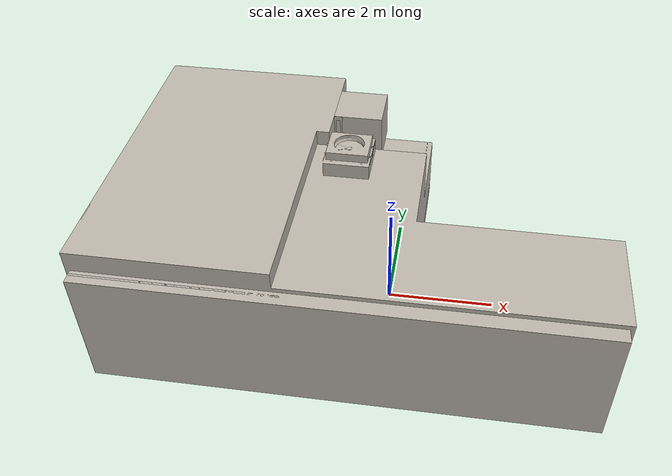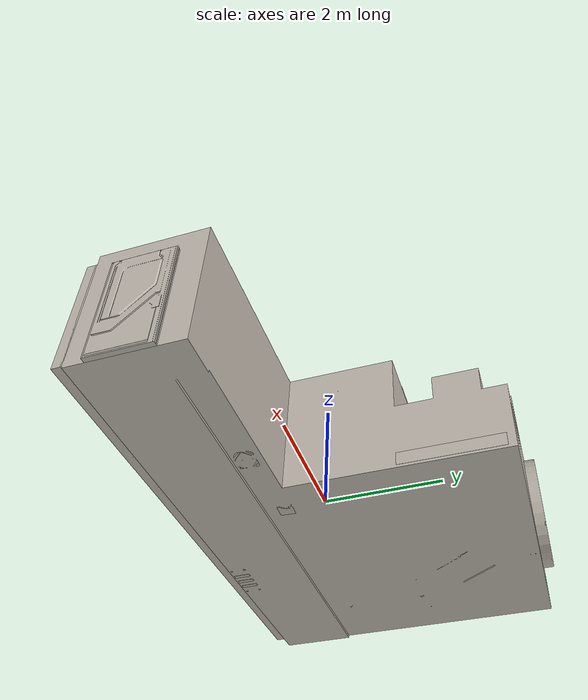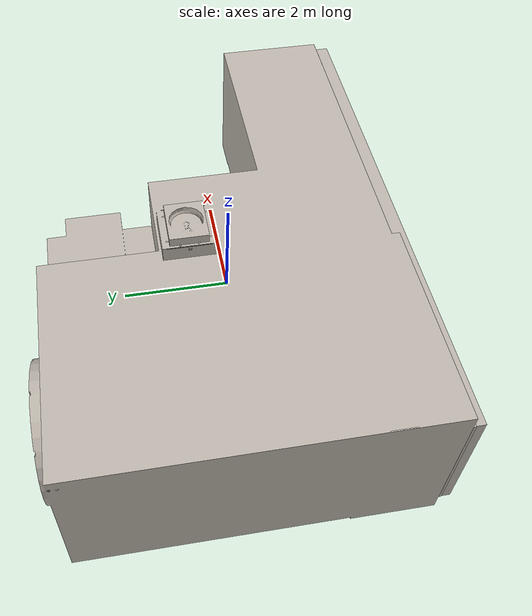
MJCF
<mujoco model="futuristic_room">
  <compiler angle="radian" eulerseq="xyz"/>
  <default>
    <default class="visual">
      <geom group="2" type="mesh" contype="0" conaffinity="0"/>
    </default>
    <default class="collision">
      <geom group="3" type="mesh"/>
    </default>
  </default>
  <asset>
    <texture type="2d" name="material_0" file="material_0.png"/>
    <material name="material_0" texture="material_0" specular="0.4000000000000001" shininess="0.001"/>
    <texture type="2d" name="material_1" file="material_1.png"/>
    <material name="material_1" texture="material_1" specular="0.4000000000000001" shininess="0.001"/>
    <texture type="2d" name="material_2" file="material_2.png"/>
    <material name="material_2" texture="material_2" specular="0.4000000000000001" shininess="0.001"/>
    <texture type="2d" name="material_3" file="material_3.png"/>
    <material name="material_3" texture="material_3" specular="0.4000000000000001" shininess="0.001"/>
    <texture type="2d" name="material_4" file="material_4.png"/>
    <material name="material_4" texture="material_4" specular="0.4000000000000001" shininess="0.001"/>
    <texture type="2d" name="material_5" file="material_5.png"/>
    <material name="material_5" texture="material_5" specular="0.4000000000000001" shininess="0.001"/>
    <texture type="2d" name="material_6" file="material_6.png"/>
    <material name="material_6" texture="material_6" specular="0.4000000000000001" shininess="0.001"/>
    <texture type="2d" name="material_7" file="material_7.png"/>
    <material name="material_7" texture="material_7" specular="0.4000000000000001" shininess="0.001"/>
    <texture type="2d" name="material_8" file="material_8.png"/>
    <material name="material_8" texture="material_8" specular="0.4000000000000001" shininess="0.001"/>
    <texture type="2d" name="material_9" file="material_9.png"/>
    <material name="material_9" texture="material_9" specular="0.4000000000000001" shininess="0.001"/>
    <texture type="2d" name="material_10" file="material_10.png"/>
    <material name="material_10" texture="material_10" specular="0.4000000000000001" shininess="0.001"/>
    <texture type="2d" name="material_11" file="material_11.png"/>
    <material name="material_11" texture="material_11" specular="0.4000000000000001" shininess="0.001"/>
    <texture type="2d" name="material_12" file="material_12.png"/>
    <material name="material_12" texture="material_12" specular="0.4000000000000001" shininess="0.001"/>
    <texture type="2d" name="material_13" file="material_13.png"/>
    <material name="material_13" texture="material_13" specular="0.4000000000000001" shininess="0.001"/>
    <texture type="2d" name="material_14" file="material_14.png"/>
    <material name="material_14" texture="material_14" specular="0.4000000000000001" shininess="0.001"/>
    <texture type="2d" name="material_15" file="material_15.png"/>
    <material name="material_15" texture="material_15" specular="0.4000000000000001" shininess="0.001"/>
    <texture type="2d" name="material_16" file="material_16.png"/>
    <material name="material_16" texture="material_16" specular="0.4000000000000001" shininess="0.001"/>
    <texture type="2d" name="material_17" file="material_17.png"/>
    <material name="material_17" texture="material_17" specular="0.4000000000000001" shininess="0.001"/>
    <texture type="2d" name="material_18" file="material_18.png"/>
    <material name="material_18" texture="material_18" specular="0.4000000000000001" shininess="0.001"/>
    <texture type="2d" name="material_19" file="material_19.png"/>
    <material name="material_19" texture="material_19" specular="0.4000000000000001" shininess="0.001"/>
    <texture type="2d" name="material_20" file="material_20.png"/>
    <material name="material_20" texture="material_20" specular="0.4000000000000001" shininess="0.001"/>
    <texture type="2d" name="material_21" file="material_21.png"/>
    <material name="material_21" texture="material_21" specular="0.4000000000000001" shininess="0.001"/>
    <texture type="2d" name="material_22" file="material_22.png"/>
    <material name="material_22" texture="material_22" specular="0.4000000000000001" shininess="0.001"/>
    <texture type="2d" name="material_23" file="material_23.png"/>
    <material name="material_23" texture="material_23" specular="0.4000000000000001" shininess="0.001"/>
    <texture type="2d" name="material_24" file="material_24.png"/>
    <material name="material_24" texture="material_24" specular="0.4000000000000001" shininess="0.001"/>
    <texture type="2d" name="material_25" file="material_25.png"/>
    <material name="material_25" texture="material_25" specular="0.4000000000000001" shininess="0.001"/>
    <texture type="2d" name="material_26" file="material_26.png"/>
    <material name="material_26" texture="material_26" specular="0.4000000000000001" shininess="0.001"/>
    <mesh file="futuristic_room_0.obj"/>
    <mesh file="futuristic_room_1.obj"/>
    <mesh file="futuristic_room_2.obj"/>
    <mesh file="futuristic_room_3.obj"/>
    <mesh file="futuristic_room_4.obj"/>
    <mesh file="futuristic_room_5.obj"/>
    <mesh file="futuristic_room_6.obj"/>
    <mesh file="futuristic_room_7.obj"/>
    <mesh file="futuristic_room_8.obj"/>
    <mesh file="futuristic_room_9.obj"/>
    <mesh file="futuristic_room_10.obj"/>
    <mesh file="futuristic_room_11.obj"/>
    <mesh file="futuristic_room_12.obj"/>
    <mesh file="futuristic_room_13.obj"/>
    <mesh file="futuristic_room_14.obj"/>
    <mesh file="futuristic_room_15.obj"/>
    <mesh file="futuristic_room_16.obj"/>
    <mesh file="futuristic_room_17.obj"/>
    <mesh file="futuristic_room_18.obj"/>
    <mesh file="futuristic_room_19.obj"/>
    <mesh file="futuristic_room_20.obj"/>
    <mesh file="futuristic_room_21.obj"/>
    <mesh file="futuristic_room_22.obj"/>
    <mesh file="futuristic_room_23.obj"/>
    <mesh file="futuristic_room_24.obj"/>
    <mesh file="futuristic_room_25.obj"/>
    <mesh file="futuristic_room_26.obj"/>
    <mesh file="futuristic_room_collision_0.obj"/>
    <mesh file="futuristic_room_collision_1.obj"/>
    <mesh file="futuristic_room_collision_2.obj"/>
    <mesh file="futuristic_room_collision_3.obj"/>
    <mesh file="futuristic_room_collision_4.obj"/>
    <mesh file="futuristic_room_collision_5.obj"/>
    <mesh file="futuristic_room_collision_6.obj"/>
    <mesh file="futuristic_room_collision_7.obj"/>
    <mesh file="futuristic_room_collision_8.obj"/>
    <mesh file="futuristic_room_collision_9.obj"/>
  </asset>
  <worldbody>
    <body name="futuristic_room" euler="1.57 0 0">
      <geom mesh="futuristic_room_0" material="material_26" class="visual"/>
      <geom mesh="futuristic_room_1" material="material_25" class="visual"/>
      <geom mesh="futuristic_room_2" material="material_24" class="visual"/>
      <geom mesh="futuristic_room_3" material="material_23" class="visual"/>
      <geom mesh="futuristic_room_4" material="material_22" class="visual"/>
      <geom mesh="futuristic_room_5" material="material_21" class="visual"/>
      <geom mesh="futuristic_room_6" material="material_20" class="visual"/>
      <geom mesh="futuristic_room_7" material="material_19" class="visual"/>
      <geom mesh="futuristic_room_8" material="material_18" class="visual"/>
      <geom mesh="futuristic_room_9" material="material_17" class="visual"/>
      <geom mesh="futuristic_room_10" material="material_16" class="visual"/>
      <geom mesh="futuristic_room_11" material="material_15" class="visual"/>
      <geom mesh="futuristic_room_12" material="material_14" class="visual"/>
      <geom mesh="futuristic_room_13" material="material_13" class="visual"/>
      <geom mesh="futuristic_room_14" material="material_12" class="visual"/>
      <geom mesh="futuristic_room_15" material="material_11" class="visual"/>
      <geom mesh="futuristic_room_16" material="material_10" class="visual"/>
      <geom mesh="futuristic_room_17" material="material_9" class="visual"/>
      <geom mesh="futuristic_room_18" material="material_8" class="visual"/>
      <geom mesh="futuristic_room_19" material="material_7" class="visual"/>
      <geom mesh="futuristic_room_20" material="material_6" class="visual"/>
      <geom mesh="futuristic_room_21" material="material_5" class="visual"/>
      <geom mesh="futuristic_room_22" material="material_4" class="visual"/>
      <geom mesh="futuristic_room_23" material="material_3" class="visual"/>
      <geom mesh="futuristic_room_24" material="material_2" class="visual"/>
      <geom mesh="futuristic_room_25" material="material_1" class="visual"/>
      <geom mesh="futuristic_room_26" material="material_0" class="visual"/>
      <geom mesh="futuristic_room_collision_0" rgba="0.2940771742061977 0.7552858754060235 0.6800621837179639 1" class="collision"/>
      <geom mesh="futuristic_room_collision_1" rgba="0.9775260668533312 0.21060870848520497 0.19252274439353378 1" class="collision"/>
      <geom mesh="futuristic_room_collision_2" rgba="0.38825437964816334 0.33765850855572677 0.3611931609291389 1" class="collision"/>
      <geom mesh="futuristic_room_collision_3" rgba="0.8223065851995667 0.6035480073544675 0.44614146348489236 1" class="collision"/>
      <geom mesh="futuristic_room_collision_4" rgba="0.10340114759094099 0.04354669093779817 0.8746040101969308 1" class="collision"/>
      <geom mesh="futuristic_room_collision_5" rgba="0.06035246203712563 0.25318351757286506 0.3184399287046412 1" class="collision"/>
      <geom mesh="futuristic_room_collision_6" rgba="0.5894085616801131 0.4038353129094089 0.19726038355435038 1" class="collision"/>
      <geom mesh="futuristic_room_collision_7" rgba="0.5237475168767949 0.22306686448624935 0.921748227673486 1" class="collision"/>
      <geom mesh="futuristic_room_collision_8" rgba="0.0941228562424975 0.5130674945832139 0.06217023026909496 1" class="collision"/>
      <geom mesh="futuristic_room_collision_9" rgba="0.6146981638400555 0.8647079296205775 0.08229348594936148 1" class="collision"/>
    </body>
  </worldbody>
</mujoco>
